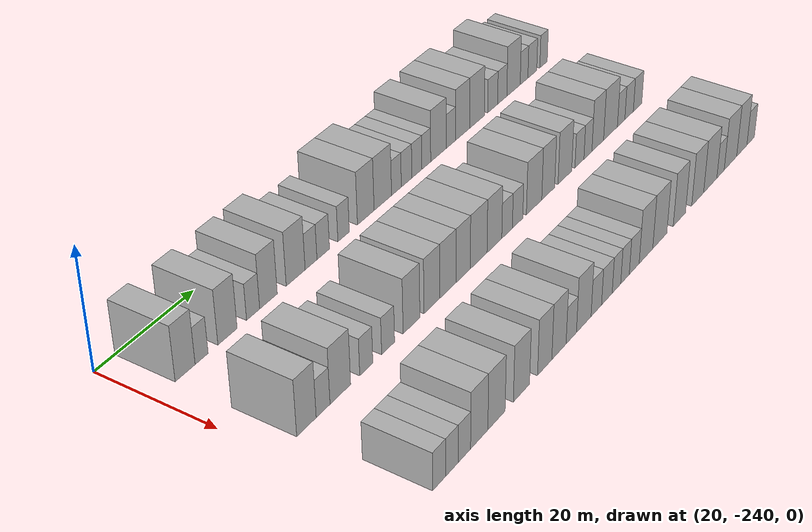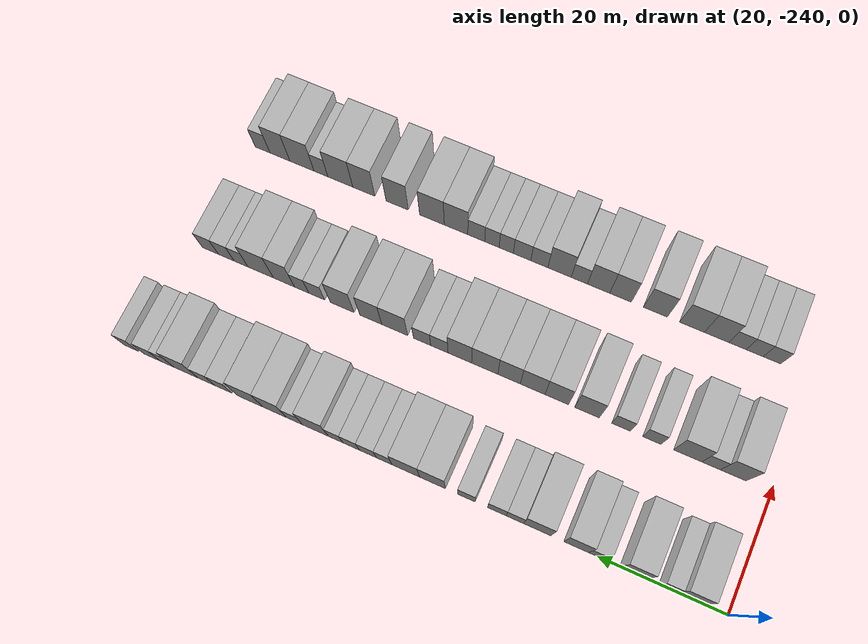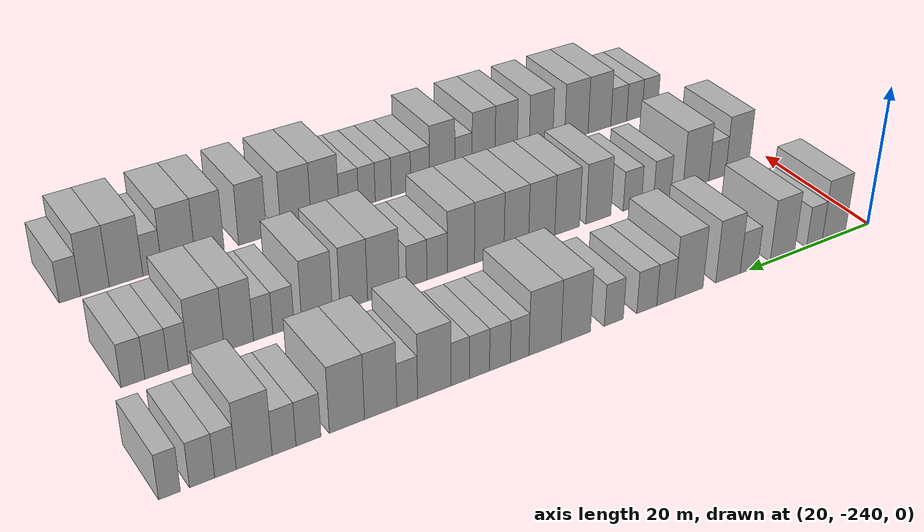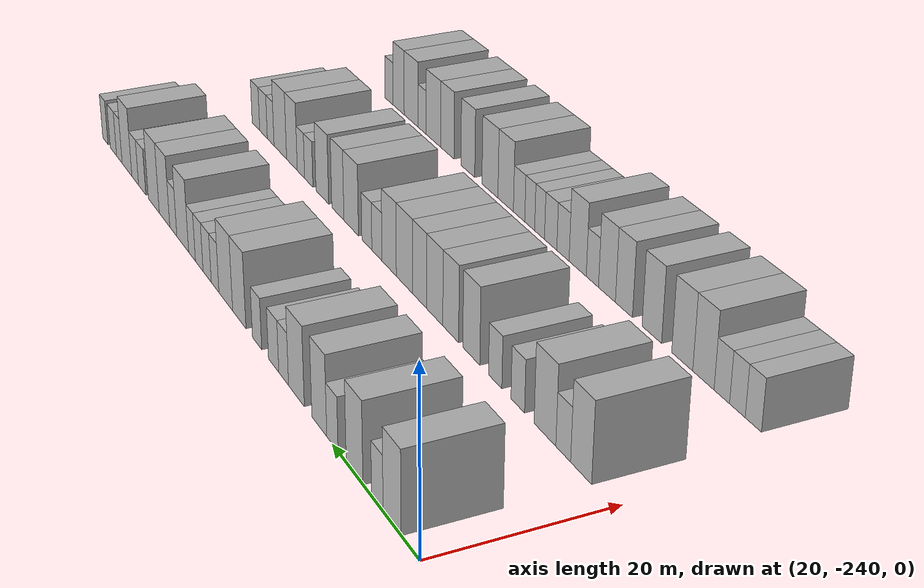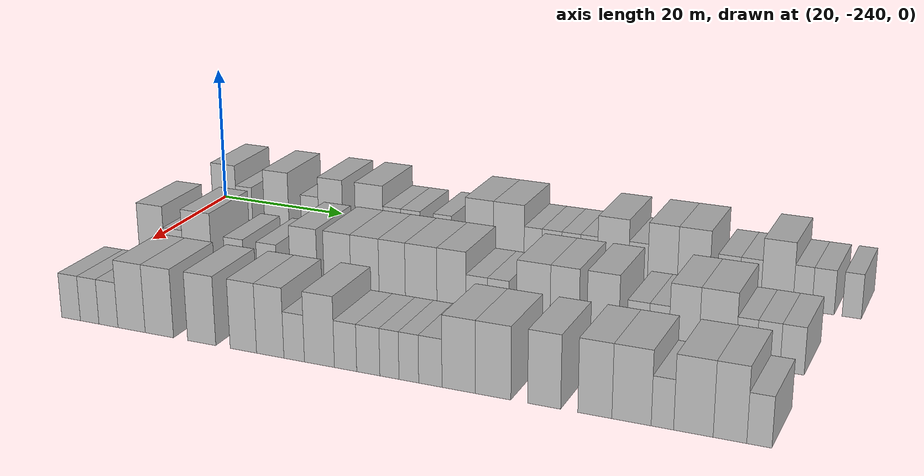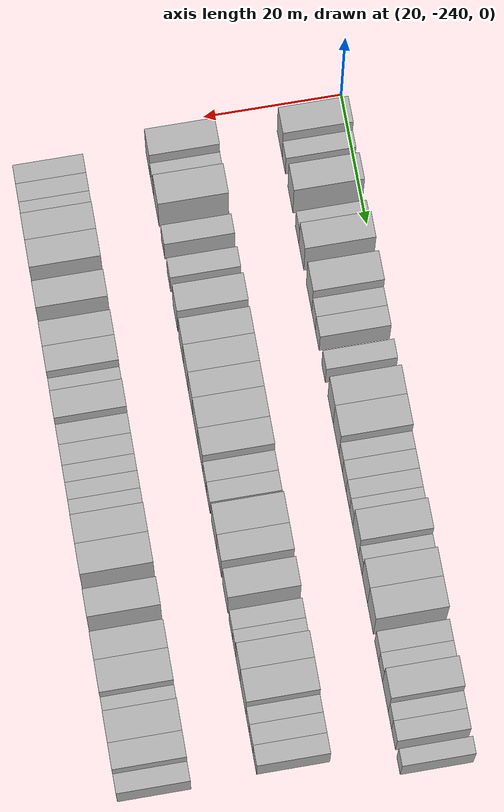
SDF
<sdf version="1.6">
 <world name="default">
  <model name="building_1">
   <static>1</static>
   <pose>25.0000 -234.0155 0 0.000000 0.000000 0.000000</pose>
   <link name="link">
    <pose>0 0 4.50 0 0 0</pose>
    <collision name="collision"><geometry><box><size>10.0000 3.9690 9.0000</size></box></geometry></collision>
    <visual name="visual">
     <cast_shadows>0</cast_shadows>
     <geometry><box><size>10.0000 3.9690 9.0000</size></box></geometry>
     <material>
      <script>
       <uri>model://HANNAS_wall/materials/scripts</uri>
       <uri>model://HANNAS_wall/materials/textures</uri>
       <name>vrc/HANNAS_wall</name>
      </script>
     </material>
    </visual>
   </link>
  </model>
  <model name="building_2">
   <static>1</static>
   <pose>25.0000 -230.7172 0 0.000000 0.000000 0.000000</pose>
   <link name="link">
    <pose>0 0 3.00 0 0 0</pose>
    <collision name="collision"><geometry><box><size>10.0000 2.6275 6.0000</size></box></geometry></collision>
    <visual name="visual">
     <cast_shadows>0</cast_shadows>
     <geometry><box><size>10.0000 2.6275 6.0000</size></box></geometry>
     <material>
      <script>
       <uri>model://HANNAS_wall/materials/scripts</uri>
       <uri>model://HANNAS_wall/materials/textures</uri>
       <name>vrc/HANNAS_wall</name>
      </script>
     </material>
    </visual>
   </link>
  </model>
  <model name="building_3">
   <static>1</static>
   <pose>25.0000 -225.3931 0 0.000000 0.000000 0.000000</pose>
   <link name="link">
    <pose>0 0 4.50 0 0 0</pose>
    <collision name="collision"><geometry><box><size>10.0000 4.0208 9.0000</size></box></geometry></collision>
    <visual name="visual">
     <cast_shadows>0</cast_shadows>
     <geometry><box><size>10.0000 4.0208 9.0000</size></box></geometry>
     <material>
      <script>
       <uri>model://HANNAS_wall/materials/scripts</uri>
       <uri>model://HANNAS_wall/materials/textures</uri>
       <name>vrc/HANNAS_wall</name>
      </script>
     </material>
    </visual>
   </link>
  </model>
  <model name="building_4">
   <static>1</static>
   <pose>25.0000 -219.9608 0 0.000000 0.000000 0.000000</pose>
   <link name="link">
    <pose>0 0 3.00 0 0 0</pose>
    <collision name="collision"><geometry><box><size>10.0000 2.8438 6.0000</size></box></geometry></collision>
    <visual name="visual">
     <cast_shadows>0</cast_shadows>
     <geometry><box><size>10.0000 2.8438 6.0000</size></box></geometry>
     <material>
      <script>
       <uri>model://HANNAS_wall/materials/scripts</uri>
       <uri>model://HANNAS_wall/materials/textures</uri>
       <name>vrc/HANNAS_wall</name>
      </script>
     </material>
    </visual>
   </link>
  </model>
  <model name="building_5">
   <static>1</static>
   <pose>25.0000 -216.6065 0 0.000000 0.000000 0.000000</pose>
   <link name="link">
    <pose>0 0 4.50 0 0 0</pose>
    <collision name="collision"><geometry><box><size>10.0000 3.8647 9.0000</size></box></geometry></collision>
    <visual name="visual">
     <cast_shadows>0</cast_shadows>
     <geometry><box><size>10.0000 3.8647 9.0000</size></box></geometry>
     <material>
      <script>
       <uri>model://HANNAS_wall/materials/scripts</uri>
       <uri>model://HANNAS_wall/materials/textures</uri>
       <name>vrc/HANNAS_wall</name>
      </script>
     </material>
    </visual>
   </link>
  </model>
  <model name="building_6">
   <static>1</static>
   <pose>25.0000 -210.5149 0 0.000000 0.000000 0.000000</pose>
   <link name="link">
    <pose>0 0 4.50 0 0 0</pose>
    <collision name="collision"><geometry><box><size>10.0000 4.3187 9.0000</size></box></geometry></collision>
    <visual name="visual">
     <cast_shadows>0</cast_shadows>
     <geometry><box><size>10.0000 4.3187 9.0000</size></box></geometry>
     <material>
      <script>
       <uri>model://HANNAS_wall/materials/scripts</uri>
       <uri>model://HANNAS_wall/materials/textures</uri>
       <name>vrc/HANNAS_wall</name>
      </script>
     </material>
    </visual>
   </link>
  </model>
  <model name="building_7">
   <static>1</static>
   <pose>25.0000 -206.9781 0 0.000000 0.000000 0.000000</pose>
   <link name="link">
    <pose>0 0 3.00 0 0 0</pose>
    <collision name="collision"><geometry><box><size>10.0000 2.7549 6.0000</size></box></geometry></collision>
    <visual name="visual">
     <cast_shadows>0</cast_shadows>
     <geometry><box><size>10.0000 2.7549 6.0000</size></box></geometry>
     <material>
      <script>
       <uri>model://HANNAS_wall/materials/scripts</uri>
       <uri>model://HANNAS_wall/materials/textures</uri>
       <name>vrc/HANNAS_wall</name>
      </script>
     </material>
    </visual>
   </link>
  </model>
  <model name="building_8">
   <static>1</static>
   <pose>25.0000 -204.1139 0 0.000000 0.000000 0.000000</pose>
   <link name="link">
    <pose>0 0 3.00 0 0 0</pose>
    <collision name="collision"><geometry><box><size>10.0000 2.9734 6.0000</size></box></geometry></collision>
    <visual name="visual">
     <cast_shadows>0</cast_shadows>
     <geometry><box><size>10.0000 2.9734 6.0000</size></box></geometry>
     <material>
      <script>
       <uri>model://HANNAS_wall/materials/scripts</uri>
       <uri>model://HANNAS_wall/materials/textures</uri>
       <name>vrc/HANNAS_wall</name>
      </script>
     </material>
    </visual>
   </link>
  </model>
  <model name="building_9">
   <static>1</static>
   <pose>25.0000 -199.2379 0 0.000000 0.000000 0.000000</pose>
   <link name="link">
    <pose>0 0 3.00 0 0 0</pose>
    <collision name="collision"><geometry><box><size>10.0000 2.7785 6.0000</size></box></geometry></collision>
    <visual name="visual">
     <cast_shadows>0</cast_shadows>
     <geometry><box><size>10.0000 2.7785 6.0000</size></box></geometry>
     <material>
      <script>
       <uri>model://HANNAS_wall/materials/scripts</uri>
       <uri>model://HANNAS_wall/materials/textures</uri>
       <name>vrc/HANNAS_wall</name>
      </script>
     </material>
    </visual>
   </link>
  </model>
  <model name="building_10">
   <static>1</static>
   <pose>25.0000 -193.7581 0 0.000000 0.000000 0.000000</pose>
   <link name="link">
    <pose>0 0 4.50 0 0 0</pose>
    <collision name="collision"><geometry><box><size>10.0000 4.1811 9.0000</size></box></geometry></collision>
    <visual name="visual">
     <cast_shadows>0</cast_shadows>
     <geometry><box><size>10.0000 4.1811 9.0000</size></box></geometry>
     <material>
      <script>
       <uri>model://HANNAS_wall/materials/scripts</uri>
       <uri>model://HANNAS_wall/materials/textures</uri>
       <name>vrc/HANNAS_wall</name>
      </script>
     </material>
    </visual>
   </link>
  </model>
  <model name="building_11">
   <static>1</static>
   <pose>25.0000 -189.4293 0 0.000000 0.000000 0.000000</pose>
   <link name="link">
    <pose>0 0 4.50 0 0 0</pose>
    <collision name="collision"><geometry><box><size>10.0000 4.4765 9.0000</size></box></geometry></collision>
    <visual name="visual">
     <cast_shadows>0</cast_shadows>
     <geometry><box><size>10.0000 4.4765 9.0000</size></box></geometry>
     <material>
      <script>
       <uri>model://HANNAS_wall/materials/scripts</uri>
       <uri>model://HANNAS_wall/materials/textures</uri>
       <name>vrc/HANNAS_wall</name>
      </script>
     </material>
    </visual>
   </link>
  </model>
  <model name="building_12">
   <static>1</static>
   <pose>25.0000 -185.9155 0 0.000000 0.000000 0.000000</pose>
   <link name="link">
    <pose>0 0 3.00 0 0 0</pose>
    <collision name="collision"><geometry><box><size>10.0000 2.5512 6.0000</size></box></geometry></collision>
    <visual name="visual">
     <cast_shadows>0</cast_shadows>
     <geometry><box><size>10.0000 2.5512 6.0000</size></box></geometry>
     <material>
      <script>
       <uri>model://HANNAS_wall/materials/scripts</uri>
       <uri>model://HANNAS_wall/materials/textures</uri>
       <name>vrc/HANNAS_wall</name>
      </script>
     </material>
    </visual>
   </link>
  </model>
  <model name="building_13">
   <static>1</static>
   <pose>25.0000 -183.2340 0 0.000000 0.000000 0.000000</pose>
   <link name="link">
    <pose>0 0 3.00 0 0 0</pose>
    <collision name="collision"><geometry><box><size>10.0000 2.8118 6.0000</size></box></geometry></collision>
    <visual name="visual">
     <cast_shadows>0</cast_shadows>
     <geometry><box><size>10.0000 2.8118 6.0000</size></box></geometry>
     <material>
      <script>
       <uri>model://HANNAS_wall/materials/scripts</uri>
       <uri>model://HANNAS_wall/materials/textures</uri>
       <name>vrc/HANNAS_wall</name>
      </script>
     </material>
    </visual>
   </link>
  </model>
  <model name="building_14">
   <static>1</static>
   <pose>25.0000 -180.4891 0 0.000000 0.000000 0.000000</pose>
   <link name="link">
    <pose>0 0 3.00 0 0 0</pose>
    <collision name="collision"><geometry><box><size>10.0000 2.6780 6.0000</size></box></geometry></collision>
    <visual name="visual">
     <cast_shadows>0</cast_shadows>
     <geometry><box><size>10.0000 2.6780 6.0000</size></box></geometry>
     <material>
      <script>
       <uri>model://HANNAS_wall/materials/scripts</uri>
       <uri>model://HANNAS_wall/materials/textures</uri>
       <name>vrc/HANNAS_wall</name>
      </script>
     </material>
    </visual>
   </link>
  </model>
  <model name="building_15">
   <static>1</static>
   <pose>25.0000 -177.9431 0 0.000000 0.000000 0.000000</pose>
   <link name="link">
    <pose>0 0 3.00 0 0 0</pose>
    <collision name="collision"><geometry><box><size>10.0000 2.4139 6.0000</size></box></geometry></collision>
    <visual name="visual">
     <cast_shadows>0</cast_shadows>
     <geometry><box><size>10.0000 2.4139 6.0000</size></box></geometry>
     <material>
      <script>
       <uri>model://HANNAS_wall/materials/scripts</uri>
       <uri>model://HANNAS_wall/materials/textures</uri>
       <name>vrc/HANNAS_wall</name>
      </script>
     </material>
    </visual>
   </link>
  </model>
  <model name="building_16">
   <static>1</static>
   <pose>25.0000 -174.5769 0 0.000000 0.000000 0.000000</pose>
   <link name="link">
    <pose>0 0 4.50 0 0 0</pose>
    <collision name="collision"><geometry><box><size>10.0000 4.3185 9.0000</size></box></geometry></collision>
    <visual name="visual">
     <cast_shadows>0</cast_shadows>
     <geometry><box><size>10.0000 4.3185 9.0000</size></box></geometry>
     <material>
      <script>
       <uri>model://HANNAS_wall/materials/scripts</uri>
       <uri>model://HANNAS_wall/materials/textures</uri>
       <name>vrc/HANNAS_wall</name>
      </script>
     </material>
    </visual>
   </link>
  </model>
  <model name="building_17">
   <static>1</static>
   <pose>25.0000 -171.0987 0 0.000000 0.000000 0.000000</pose>
   <link name="link">
    <pose>0 0 3.00 0 0 0</pose>
    <collision name="collision"><geometry><box><size>10.0000 2.6379 6.0000</size></box></geometry></collision>
    <visual name="visual">
     <cast_shadows>0</cast_shadows>
     <geometry><box><size>10.0000 2.6379 6.0000</size></box></geometry>
     <material>
      <script>
       <uri>model://HANNAS_wall/materials/scripts</uri>
       <uri>model://HANNAS_wall/materials/textures</uri>
       <name>vrc/HANNAS_wall</name>
      </script>
     </material>
    </visual>
   </link>
  </model>
  <model name="building_18">
   <static>1</static>
   <pose>25.0000 -167.7574 0 0.000000 0.000000 0.000000</pose>
   <link name="link">
    <pose>0 0 4.50 0 0 0</pose>
    <collision name="collision"><geometry><box><size>10.0000 4.0447 9.0000</size></box></geometry></collision>
    <visual name="visual">
     <cast_shadows>0</cast_shadows>
     <geometry><box><size>10.0000 4.0447 9.0000</size></box></geometry>
     <material>
      <script>
       <uri>model://HANNAS_wall/materials/scripts</uri>
       <uri>model://HANNAS_wall/materials/textures</uri>
       <name>vrc/HANNAS_wall</name>
      </script>
     </material>
    </visual>
   </link>
  </model>
  <model name="building_19">
   <static>1</static>
   <pose>25.0000 -163.5746 0 0.000000 0.000000 0.000000</pose>
   <link name="link">
    <pose>0 0 4.50 0 0 0</pose>
    <collision name="collision"><geometry><box><size>10.0000 4.3209 9.0000</size></box></geometry></collision>
    <visual name="visual">
     <cast_shadows>0</cast_shadows>
     <geometry><box><size>10.0000 4.3209 9.0000</size></box></geometry>
     <material>
      <script>
       <uri>model://HANNAS_wall/materials/scripts</uri>
       <uri>model://HANNAS_wall/materials/textures</uri>
       <name>vrc/HANNAS_wall</name>
      </script>
     </material>
    </visual>
   </link>
  </model>
  <model name="building_20">
   <static>1</static>
   <pose>25.0000 -158.9256 0 0.000000 0.000000 0.000000</pose>
   <link name="link">
    <pose>0 0 3.00 0 0 0</pose>
    <collision name="collision"><geometry><box><size>10.0000 2.9771 6.0000</size></box></geometry></collision>
    <visual name="visual">
     <cast_shadows>0</cast_shadows>
     <geometry><box><size>10.0000 2.9771 6.0000</size></box></geometry>
     <material>
      <script>
       <uri>model://HANNAS_wall/materials/scripts</uri>
       <uri>model://HANNAS_wall/materials/textures</uri>
       <name>vrc/HANNAS_wall</name>
      </script>
     </material>
    </visual>
   </link>
  </model>
  <model name="building_21">
   <static>1</static>
   <pose>25.0000 -156.0341 0 0.000000 0.000000 0.000000</pose>
   <link name="link">
    <pose>0 0 3.00 0 0 0</pose>
    <collision name="collision"><geometry><box><size>10.0000 2.8059 6.0000</size></box></geometry></collision>
    <visual name="visual">
     <cast_shadows>0</cast_shadows>
     <geometry><box><size>10.0000 2.8059 6.0000</size></box></geometry>
     <material>
      <script>
       <uri>model://HANNAS_wall/materials/scripts</uri>
       <uri>model://HANNAS_wall/materials/textures</uri>
       <name>vrc/HANNAS_wall</name>
      </script>
     </material>
    </visual>
   </link>
  </model>
  <model name="building_22">
   <static>1</static>
   <pose>25.0000 -152.5541 0 0.000000 0.000000 0.000000</pose>
   <link name="link">
    <pose>0 0 4.50 0 0 0</pose>
    <collision name="collision"><geometry><box><size>10.0000 4.1543 9.0000</size></box></geometry></collision>
    <visual name="visual">
     <cast_shadows>0</cast_shadows>
     <geometry><box><size>10.0000 4.1543 9.0000</size></box></geometry>
     <material>
      <script>
       <uri>model://HANNAS_wall/materials/scripts</uri>
       <uri>model://HANNAS_wall/materials/textures</uri>
       <name>vrc/HANNAS_wall</name>
      </script>
     </material>
    </visual>
   </link>
  </model>
  <model name="building_23">
   <static>1</static>
   <pose>25.0000 -149.2589 0 0.000000 0.000000 0.000000</pose>
   <link name="link">
    <pose>0 0 3.00 0 0 0</pose>
    <collision name="collision"><geometry><box><size>10.0000 2.4361 6.0000</size></box></geometry></collision>
    <visual name="visual">
     <cast_shadows>0</cast_shadows>
     <geometry><box><size>10.0000 2.4361 6.0000</size></box></geometry>
     <material>
      <script>
       <uri>model://HANNAS_wall/materials/scripts</uri>
       <uri>model://HANNAS_wall/materials/textures</uri>
       <name>vrc/HANNAS_wall</name>
      </script>
     </material>
    </visual>
   </link>
  </model>
  <model name="building_24">
   <static>1</static>
   <pose>25.0000 -146.6283 0 0.000000 0.000000 0.000000</pose>
   <link name="link">
    <pose>0 0 3.00 0 0 0</pose>
    <collision name="collision"><geometry><box><size>10.0000 2.8251 6.0000</size></box></geometry></collision>
    <visual name="visual">
     <cast_shadows>0</cast_shadows>
     <geometry><box><size>10.0000 2.8251 6.0000</size></box></geometry>
     <material>
      <script>
       <uri>model://HANNAS_wall/materials/scripts</uri>
       <uri>model://HANNAS_wall/materials/textures</uri>
       <name>vrc/HANNAS_wall</name>
      </script>
     </material>
    </visual>
   </link>
  </model>
  <model name="building_25">
   <static>1</static>
   <pose>25.0000 -143.0133 0 0.000000 0.000000 0.000000</pose>
   <link name="link">
    <pose>0 0 3.00 0 0 0</pose>
    <collision name="collision"><geometry><box><size>10.0000 2.4048 6.0000</size></box></geometry></collision>
    <visual name="visual">
     <cast_shadows>0</cast_shadows>
     <geometry><box><size>10.0000 2.4048 6.0000</size></box></geometry>
     <material>
      <script>
       <uri>model://HANNAS_wall/materials/scripts</uri>
       <uri>model://HANNAS_wall/materials/textures</uri>
       <name>vrc/HANNAS_wall</name>
      </script>
     </material>
    </visual>
   </link>
  </model>
  <model name="building_121">
   <static>1</static>
   <pose>44.0000 -233.9876 0 0.000000 0.000000 0.000000</pose>
   <link name="link">
    <pose>0 0 4.50 0 0 0</pose>
    <collision name="collision"><geometry><box><size>10.0000 4.0248 9.0000</size></box></geometry></collision>
    <visual name="visual">
     <cast_shadows>0</cast_shadows>
     <geometry><box><size>10.0000 4.0248 9.0000</size></box></geometry>
     <material>
      <script>
       <uri>model://HANNAS_wall/materials/scripts</uri>
       <uri>model://HANNAS_wall/materials/textures</uri>
       <name>vrc/HANNAS_wall</name>
      </script>
     </material>
    </visual>
   </link>
  </model>
  <model name="building_122">
   <static>1</static>
   <pose>44.0000 -230.5159 0 0.000000 0.000000 0.000000</pose>
   <link name="link">
    <pose>0 0 3.00 0 0 0</pose>
    <collision name="collision"><geometry><box><size>10.0000 2.9187 6.0000</size></box></geometry></collision>
    <visual name="visual">
     <cast_shadows>0</cast_shadows>
     <geometry><box><size>10.0000 2.9187 6.0000</size></box></geometry>
     <material>
      <script>
       <uri>model://HANNAS_wall/materials/scripts</uri>
       <uri>model://HANNAS_wall/materials/textures</uri>
       <name>vrc/HANNAS_wall</name>
      </script>
     </material>
    </visual>
   </link>
  </model>
  <model name="building_123">
   <static>1</static>
   <pose>44.0000 -226.8303 0 0.000000 0.000000 0.000000</pose>
   <link name="link">
    <pose>0 0 4.50 0 0 0</pose>
    <collision name="collision"><geometry><box><size>10.0000 4.4525 9.0000</size></box></geometry></collision>
    <visual name="visual">
     <cast_shadows>0</cast_shadows>
     <geometry><box><size>10.0000 4.4525 9.0000</size></box></geometry>
     <material>
      <script>
       <uri>model://HANNAS_wall/materials/scripts</uri>
       <uri>model://HANNAS_wall/materials/textures</uri>
       <name>vrc/HANNAS_wall</name>
      </script>
     </material>
    </visual>
   </link>
  </model>
  <model name="building_124">
   <static>1</static>
   <pose>44.0000 -221.1422 0 0.000000 0.000000 0.000000</pose>
   <link name="link">
    <pose>0 0 3.00 0 0 0</pose>
    <collision name="collision"><geometry><box><size>10.0000 2.9237 6.0000</size></box></geometry></collision>
    <visual name="visual">
     <cast_shadows>0</cast_shadows>
     <geometry><box><size>10.0000 2.9237 6.0000</size></box></geometry>
     <material>
      <script>
       <uri>model://HANNAS_wall/materials/scripts</uri>
       <uri>model://HANNAS_wall/materials/textures</uri>
       <name>vrc/HANNAS_wall</name>
      </script>
     </material>
    </visual>
   </link>
  </model>
  <model name="building_125">
   <static>1</static>
   <pose>44.0000 -216.1882 0 0.000000 0.000000 0.000000</pose>
   <link name="link">
    <pose>0 0 3.00 0 0 0</pose>
    <collision name="collision"><geometry><box><size>10.0000 2.9843 6.0000</size></box></geometry></collision>
    <visual name="visual">
     <cast_shadows>0</cast_shadows>
     <geometry><box><size>10.0000 2.9843 6.0000</size></box></geometry>
     <material>
      <script>
       <uri>model://HANNAS_wall/materials/scripts</uri>
       <uri>model://HANNAS_wall/materials/textures</uri>
       <name>vrc/HANNAS_wall</name>
      </script>
     </material>
    </visual>
   </link>
  </model>
  <model name="building_126">
   <static>1</static>
   <pose>44.0000 -210.7000 0 0.000000 0.000000 0.000000</pose>
   <link name="link">
    <pose>0 0 4.50 0 0 0</pose>
    <collision name="collision"><geometry><box><size>10.0000 3.9922 9.0000</size></box></geometry></collision>
    <visual name="visual">
     <cast_shadows>0</cast_shadows>
     <geometry><box><size>10.0000 3.9922 9.0000</size></box></geometry>
     <material>
      <script>
       <uri>model://HANNAS_wall/materials/scripts</uri>
       <uri>model://HANNAS_wall/materials/textures</uri>
       <name>vrc/HANNAS_wall</name>
      </script>
     </material>
    </visual>
   </link>
  </model>
  <model name="building_127">
   <static>1</static>
   <pose>44.0000 -205.7684 0 0.000000 0.000000 0.000000</pose>
   <link name="link">
    <pose>0 0 4.50 0 0 0</pose>
    <collision name="collision"><geometry><box><size>10.0000 3.8709 9.0000</size></box></geometry></collision>
    <visual name="visual">
     <cast_shadows>0</cast_shadows>
     <geometry><box><size>10.0000 3.8709 9.0000</size></box></geometry>
     <material>
      <script>
       <uri>model://HANNAS_wall/materials/scripts</uri>
       <uri>model://HANNAS_wall/materials/textures</uri>
       <name>vrc/HANNAS_wall</name>
      </script>
     </material>
    </visual>
   </link>
  </model>
  <model name="building_128">
   <static>1</static>
   <pose>44.0000 -201.8147 0 0.000000 0.000000 0.000000</pose>
   <link name="link">
    <pose>0 0 4.50 0 0 0</pose>
    <collision name="collision"><geometry><box><size>10.0000 4.0365 9.0000</size></box></geometry></collision>
    <visual name="visual">
     <cast_shadows>0</cast_shadows>
     <geometry><box><size>10.0000 4.0365 9.0000</size></box></geometry>
     <material>
      <script>
       <uri>model://HANNAS_wall/materials/scripts</uri>
       <uri>model://HANNAS_wall/materials/textures</uri>
       <name>vrc/HANNAS_wall</name>
      </script>
     </material>
    </visual>
   </link>
  </model>
  <model name="building_129">
   <static>1</static>
   <pose>44.0000 -197.9460 0 0.000000 0.000000 0.000000</pose>
   <link name="link">
    <pose>0 0 4.50 0 0 0</pose>
    <collision name="collision"><geometry><box><size>10.0000 3.7010 9.0000</size></box></geometry></collision>
    <visual name="visual">
     <cast_shadows>0</cast_shadows>
     <geometry><box><size>10.0000 3.7010 9.0000</size></box></geometry>
     <material>
      <script>
       <uri>model://HANNAS_wall/materials/scripts</uri>
       <uri>model://HANNAS_wall/materials/textures</uri>
       <name>vrc/HANNAS_wall</name>
      </script>
     </material>
    </visual>
   </link>
  </model>
  <model name="building_130">
   <static>1</static>
   <pose>44.0000 -193.9001 0 0.000000 0.000000 0.000000</pose>
   <link name="link">
    <pose>0 0 4.50 0 0 0</pose>
    <collision name="collision"><geometry><box><size>10.0000 4.3909 9.0000</size></box></geometry></collision>
    <visual name="visual">
     <cast_shadows>0</cast_shadows>
     <geometry><box><size>10.0000 4.3909 9.0000</size></box></geometry>
     <material>
      <script>
       <uri>model://HANNAS_wall/materials/scripts</uri>
       <uri>model://HANNAS_wall/materials/textures</uri>
       <name>vrc/HANNAS_wall</name>
      </script>
     </material>
    </visual>
   </link>
  </model>
  <model name="building_131">
   <static>1</static>
   <pose>44.0000 -189.7257 0 0.000000 0.000000 0.000000</pose>
   <link name="link">
    <pose>0 0 4.50 0 0 0</pose>
    <collision name="collision"><geometry><box><size>10.0000 3.9578 9.0000</size></box></geometry></collision>
    <visual name="visual">
     <cast_shadows>0</cast_shadows>
     <geometry><box><size>10.0000 3.9578 9.0000</size></box></geometry>
     <material>
      <script>
       <uri>model://HANNAS_wall/materials/scripts</uri>
       <uri>model://HANNAS_wall/materials/textures</uri>
       <name>vrc/HANNAS_wall</name>
      </script>
     </material>
    </visual>
   </link>
  </model>
  <model name="building_132">
   <static>1</static>
   <pose>44.0000 -186.2888 0 0.000000 0.000000 0.000000</pose>
   <link name="link">
    <pose>0 0 3.00 0 0 0</pose>
    <collision name="collision"><geometry><box><size>10.0000 2.9159 6.0000</size></box></geometry></collision>
    <visual name="visual">
     <cast_shadows>0</cast_shadows>
     <geometry><box><size>10.0000 2.9159 6.0000</size></box></geometry>
     <material>
      <script>
       <uri>model://HANNAS_wall/materials/scripts</uri>
       <uri>model://HANNAS_wall/materials/textures</uri>
       <name>vrc/HANNAS_wall</name>
      </script>
     </material>
    </visual>
   </link>
  </model>
  <model name="building_133">
   <static>1</static>
   <pose>44.0000 -183.3823 0 0.000000 0.000000 0.000000</pose>
   <link name="link">
    <pose>0 0 3.00 0 0 0</pose>
    <collision name="collision"><geometry><box><size>10.0000 2.8970 6.0000</size></box></geometry></collision>
    <visual name="visual">
     <cast_shadows>0</cast_shadows>
     <geometry><box><size>10.0000 2.8970 6.0000</size></box></geometry>
     <material>
      <script>
       <uri>model://HANNAS_wall/materials/scripts</uri>
       <uri>model://HANNAS_wall/materials/textures</uri>
       <name>vrc/HANNAS_wall</name>
      </script>
     </material>
    </visual>
   </link>
  </model>
  <model name="building_134">
   <static>1</static>
   <pose>44.0000 -178.7343 0 0.000000 0.000000 0.000000</pose>
   <link name="link">
    <pose>0 0 4.50 0 0 0</pose>
    <collision name="collision"><geometry><box><size>10.0000 4.3991 9.0000</size></box></geometry></collision>
    <visual name="visual">
     <cast_shadows>0</cast_shadows>
     <geometry><box><size>10.0000 4.3991 9.0000</size></box></geometry>
     <material>
      <script>
       <uri>model://HANNAS_wall/materials/scripts</uri>
       <uri>model://HANNAS_wall/materials/textures</uri>
       <name>vrc/HANNAS_wall</name>
      </script>
     </material>
    </visual>
   </link>
  </model>
  <model name="building_135">
   <static>1</static>
   <pose>44.0000 -174.6560 0 0.000000 0.000000 0.000000</pose>
   <link name="link">
    <pose>0 0 4.50 0 0 0</pose>
    <collision name="collision"><geometry><box><size>10.0000 3.7574 9.0000</size></box></geometry></collision>
    <visual name="visual">
     <cast_shadows>0</cast_shadows>
     <geometry><box><size>10.0000 3.7574 9.0000</size></box></geometry>
     <material>
      <script>
       <uri>model://HANNAS_wall/materials/scripts</uri>
       <uri>model://HANNAS_wall/materials/textures</uri>
       <name>vrc/HANNAS_wall</name>
      </script>
     </material>
    </visual>
   </link>
  </model>
  <model name="building_136">
   <static>1</static>
   <pose>44.0000 -169.7313 0 0.000000 0.000000 0.000000</pose>
   <link name="link">
    <pose>0 0 4.50 0 0 0</pose>
    <collision name="collision"><geometry><box><size>10.0000 4.0921 9.0000</size></box></geometry></collision>
    <visual name="visual">
     <cast_shadows>0</cast_shadows>
     <geometry><box><size>10.0000 4.0921 9.0000</size></box></geometry>
     <material>
      <script>
       <uri>model://HANNAS_wall/materials/scripts</uri>
       <uri>model://HANNAS_wall/materials/textures</uri>
       <name>vrc/HANNAS_wall</name>
      </script>
     </material>
    </visual>
   </link>
  </model>
  <model name="building_137">
   <static>1</static>
   <pose>44.0000 -165.3041 0 0.000000 0.000000 0.000000</pose>
   <link name="link">
    <pose>0 0 3.00 0 0 0</pose>
    <collision name="collision"><geometry><box><size>10.0000 2.7622 6.0000</size></box></geometry></collision>
    <visual name="visual">
     <cast_shadows>0</cast_shadows>
     <geometry><box><size>10.0000 2.7622 6.0000</size></box></geometry>
     <material>
      <script>
       <uri>model://HANNAS_wall/materials/scripts</uri>
       <uri>model://HANNAS_wall/materials/textures</uri>
       <name>vrc/HANNAS_wall</name>
      </script>
     </material>
    </visual>
   </link>
  </model>
  <model name="building_138">
   <static>1</static>
   <pose>44.0000 -162.6809 0 0.000000 0.000000 0.000000</pose>
   <link name="link">
    <pose>0 0 3.00 0 0 0</pose>
    <collision name="collision"><geometry><box><size>10.0000 2.4841 6.0000</size></box></geometry></collision>
    <visual name="visual">
     <cast_shadows>0</cast_shadows>
     <geometry><box><size>10.0000 2.4841 6.0000</size></box></geometry>
     <material>
      <script>
       <uri>model://HANNAS_wall/materials/scripts</uri>
       <uri>model://HANNAS_wall/materials/textures</uri>
       <name>vrc/HANNAS_wall</name>
      </script>
     </material>
    </visual>
   </link>
  </model>
  <model name="building_139">
   <static>1</static>
   <pose>44.0000 -159.5932 0 0.000000 0.000000 0.000000</pose>
   <link name="link">
    <pose>0 0 4.50 0 0 0</pose>
    <collision name="collision"><geometry><box><size>10.0000 3.6913 9.0000</size></box></geometry></collision>
    <visual name="visual">
     <cast_shadows>0</cast_shadows>
     <geometry><box><size>10.0000 3.6913 9.0000</size></box></geometry>
     <material>
      <script>
       <uri>model://HANNAS_wall/materials/scripts</uri>
       <uri>model://HANNAS_wall/materials/textures</uri>
       <name>vrc/HANNAS_wall</name>
      </script>
     </material>
    </visual>
   </link>
  </model>
  <model name="building_140">
   <static>1</static>
   <pose>44.0000 -155.5128 0 0.000000 0.000000 0.000000</pose>
   <link name="link">
    <pose>0 0 4.50 0 0 0</pose>
    <collision name="collision"><geometry><box><size>10.0000 4.4693 9.0000</size></box></geometry></collision>
    <visual name="visual">
     <cast_shadows>0</cast_shadows>
     <geometry><box><size>10.0000 4.4693 9.0000</size></box></geometry>
     <material>
      <script>
       <uri>model://HANNAS_wall/materials/scripts</uri>
       <uri>model://HANNAS_wall/materials/textures</uri>
       <name>vrc/HANNAS_wall</name>
      </script>
     </material>
    </visual>
   </link>
  </model>
  <model name="building_141">
   <static>1</static>
   <pose>44.0000 -152.0530 0 0.000000 0.000000 0.000000</pose>
   <link name="link">
    <pose>0 0 3.00 0 0 0</pose>
    <collision name="collision"><geometry><box><size>10.0000 2.4503 6.0000</size></box></geometry></collision>
    <visual name="visual">
     <cast_shadows>0</cast_shadows>
     <geometry><box><size>10.0000 2.4503 6.0000</size></box></geometry>
     <material>
      <script>
       <uri>model://HANNAS_wall/materials/scripts</uri>
       <uri>model://HANNAS_wall/materials/textures</uri>
       <name>vrc/HANNAS_wall</name>
      </script>
     </material>
    </visual>
   </link>
  </model>
  <model name="building_142">
   <static>1</static>
   <pose>44.0000 -149.4152 0 0.000000 0.000000 0.000000</pose>
   <link name="link">
    <pose>0 0 3.00 0 0 0</pose>
    <collision name="collision"><geometry><box><size>10.0000 2.8252 6.0000</size></box></geometry></collision>
    <visual name="visual">
     <cast_shadows>0</cast_shadows>
     <geometry><box><size>10.0000 2.8252 6.0000</size></box></geometry>
     <material>
      <script>
       <uri>model://HANNAS_wall/materials/scripts</uri>
       <uri>model://HANNAS_wall/materials/textures</uri>
       <name>vrc/HANNAS_wall</name>
      </script>
     </material>
    </visual>
   </link>
  </model>
  <model name="building_143">
   <static>1</static>
   <pose>44.0000 -146.5801 0 0.000000 0.000000 0.000000</pose>
   <link name="link">
    <pose>0 0 3.00 0 0 0</pose>
    <collision name="collision"><geometry><box><size>10.0000 2.8451 6.0000</size></box></geometry></collision>
    <visual name="visual">
     <cast_shadows>0</cast_shadows>
     <geometry><box><size>10.0000 2.8451 6.0000</size></box></geometry>
     <material>
      <script>
       <uri>model://HANNAS_wall/materials/scripts</uri>
       <uri>model://HANNAS_wall/materials/textures</uri>
       <name>vrc/HANNAS_wall</name>
      </script>
     </material>
    </visual>
   </link>
  </model>
  <model name="building_242">
   <static>1</static>
   <pose>63.0000 -233.5903 0 0.000000 0.000000 0.000000</pose>
   <link name="link">
    <pose>0 0 3.00 0 0 0</pose>
    <collision name="collision"><geometry><box><size>10.0000 2.8195 6.0000</size></box></geometry></collision>
    <visual name="visual">
     <cast_shadows>0</cast_shadows>
     <geometry><box><size>10.0000 2.8195 6.0000</size></box></geometry>
     <material>
      <script>
       <uri>model://HANNAS_wall/materials/scripts</uri>
       <uri>model://HANNAS_wall/materials/textures</uri>
       <name>vrc/HANNAS_wall</name>
      </script>
     </material>
    </visual>
   </link>
  </model>
  <model name="building_243">
   <static>1</static>
   <pose>63.0000 -230.7948 0 0.000000 0.000000 0.000000</pose>
   <link name="link">
    <pose>0 0 3.00 0 0 0</pose>
    <collision name="collision"><geometry><box><size>10.0000 2.7714 6.0000</size></box></geometry></collision>
    <visual name="visual">
     <cast_shadows>0</cast_shadows>
     <geometry><box><size>10.0000 2.7714 6.0000</size></box></geometry>
     <material>
      <script>
       <uri>model://HANNAS_wall/materials/scripts</uri>
       <uri>model://HANNAS_wall/materials/textures</uri>
       <name>vrc/HANNAS_wall</name>
      </script>
     </material>
    </visual>
   </link>
  </model>
  <model name="building_244">
   <static>1</static>
   <pose>63.0000 -228.0027 0 0.000000 0.000000 0.000000</pose>
   <link name="link">
    <pose>0 0 3.00 0 0 0</pose>
    <collision name="collision"><geometry><box><size>10.0000 2.8128 6.0000</size></box></geometry></collision>
    <visual name="visual">
     <cast_shadows>0</cast_shadows>
     <geometry><box><size>10.0000 2.8128 6.0000</size></box></geometry>
     <material>
      <script>
       <uri>model://HANNAS_wall/materials/scripts</uri>
       <uri>model://HANNAS_wall/materials/textures</uri>
       <name>vrc/HANNAS_wall</name>
      </script>
     </material>
    </visual>
   </link>
  </model>
  <model name="building_245">
   <static>1</static>
   <pose>63.0000 -224.5999 0 0.000000 0.000000 0.000000</pose>
   <link name="link">
    <pose>0 0 4.50 0 0 0</pose>
    <collision name="collision"><geometry><box><size>10.0000 3.9929 9.0000</size></box></geometry></collision>
    <visual name="visual">
     <cast_shadows>0</cast_shadows>
     <geometry><box><size>10.0000 3.9929 9.0000</size></box></geometry>
     <material>
      <script>
       <uri>model://HANNAS_wall/materials/scripts</uri>
       <uri>model://HANNAS_wall/materials/textures</uri>
       <name>vrc/HANNAS_wall</name>
      </script>
     </material>
    </visual>
   </link>
  </model>
  <model name="building_246">
   <static>1</static>
   <pose>63.0000 -220.5613 0 0.000000 0.000000 0.000000</pose>
   <link name="link">
    <pose>0 0 4.50 0 0 0</pose>
    <collision name="collision"><geometry><box><size>10.0000 4.0843 9.0000</size></box></geometry></collision>
    <visual name="visual">
     <cast_shadows>0</cast_shadows>
     <geometry><box><size>10.0000 4.0843 9.0000</size></box></geometry>
     <material>
      <script>
       <uri>model://HANNAS_wall/materials/scripts</uri>
       <uri>model://HANNAS_wall/materials/textures</uri>
       <name>vrc/HANNAS_wall</name>
      </script>
     </material>
    </visual>
   </link>
  </model>
  <model name="building_247">
   <static>1</static>
   <pose>63.0000 -214.5305 0 0.000000 0.000000 0.000000</pose>
   <link name="link">
    <pose>0 0 4.50 0 0 0</pose>
    <collision name="collision"><geometry><box><size>10.0000 3.9773 9.0000</size></box></geometry></collision>
    <visual name="visual">
     <cast_shadows>0</cast_shadows>
     <geometry><box><size>10.0000 3.9773 9.0000</size></box></geometry>
     <material>
      <script>
       <uri>model://HANNAS_wall/materials/scripts</uri>
       <uri>model://HANNAS_wall/materials/textures</uri>
       <name>vrc/HANNAS_wall</name>
      </script>
     </material>
    </visual>
   </link>
  </model>
  <model name="building_248">
   <static>1</static>
   <pose>63.0000 -208.7202 0 0.000000 0.000000 0.000000</pose>
   <link name="link">
    <pose>0 0 4.50 0 0 0</pose>
    <collision name="collision"><geometry><box><size>10.0000 3.6433 9.0000</size></box></geometry></collision>
    <visual name="visual">
     <cast_shadows>0</cast_shadows>
     <geometry><box><size>10.0000 3.6433 9.0000</size></box></geometry>
     <material>
      <script>
       <uri>model://HANNAS_wall/materials/scripts</uri>
       <uri>model://HANNAS_wall/materials/textures</uri>
       <name>vrc/HANNAS_wall</name>
      </script>
     </material>
    </visual>
   </link>
  </model>
  <model name="building_249">
   <static>1</static>
   <pose>63.0000 -205.0392 0 0.000000 0.000000 0.000000</pose>
   <link name="link">
    <pose>0 0 4.50 0 0 0</pose>
    <collision name="collision"><geometry><box><size>10.0000 3.7188 9.0000</size></box></geometry></collision>
    <visual name="visual">
     <cast_shadows>0</cast_shadows>
     <geometry><box><size>10.0000 3.7188 9.0000</size></box></geometry>
     <material>
      <script>
       <uri>model://HANNAS_wall/materials/scripts</uri>
       <uri>model://HANNAS_wall/materials/textures</uri>
       <name>vrc/HANNAS_wall</name>
      </script>
     </material>
    </visual>
   </link>
  </model>
  <model name="building_250">
   <static>1</static>
   <pose>63.0000 -201.8016 0 0.000000 0.000000 0.000000</pose>
   <link name="link">
    <pose>0 0 3.00 0 0 0</pose>
    <collision name="collision"><geometry><box><size>10.0000 2.7563 6.0000</size></box></geometry></collision>
    <visual name="visual">
     <cast_shadows>0</cast_shadows>
     <geometry><box><size>10.0000 2.7563 6.0000</size></box></geometry>
     <material>
      <script>
       <uri>model://HANNAS_wall/materials/scripts</uri>
       <uri>model://HANNAS_wall/materials/textures</uri>
       <name>vrc/HANNAS_wall</name>
      </script>
     </material>
    </visual>
   </link>
  </model>
  <model name="building_251">
   <static>1</static>
   <pose>63.0000 -198.4385 0 0.000000 0.000000 0.000000</pose>
   <link name="link">
    <pose>0 0 4.50 0 0 0</pose>
    <collision name="collision"><geometry><box><size>10.0000 3.9699 9.0000</size></box></geometry></collision>
    <visual name="visual">
     <cast_shadows>0</cast_shadows>
     <geometry><box><size>10.0000 3.9699 9.0000</size></box></geometry>
     <material>
      <script>
       <uri>model://HANNAS_wall/materials/scripts</uri>
       <uri>model://HANNAS_wall/materials/textures</uri>
       <name>vrc/HANNAS_wall</name>
      </script>
     </material>
    </visual>
   </link>
  </model>
  <model name="building_252">
   <static>1</static>
   <pose>63.0000 -194.9949 0 0.000000 0.000000 0.000000</pose>
   <link name="link">
    <pose>0 0 3.00 0 0 0</pose>
    <collision name="collision"><geometry><box><size>10.0000 2.9175 6.0000</size></box></geometry></collision>
    <visual name="visual">
     <cast_shadows>0</cast_shadows>
     <geometry><box><size>10.0000 2.9175 6.0000</size></box></geometry>
     <material>
      <script>
       <uri>model://HANNAS_wall/materials/scripts</uri>
       <uri>model://HANNAS_wall/materials/textures</uri>
       <name>vrc/HANNAS_wall</name>
      </script>
     </material>
    </visual>
   </link>
  </model>
  <model name="building_253">
   <static>1</static>
   <pose>63.0000 -192.0398 0 0.000000 0.000000 0.000000</pose>
   <link name="link">
    <pose>0 0 3.00 0 0 0</pose>
    <collision name="collision"><geometry><box><size>10.0000 2.9926 6.0000</size></box></geometry></collision>
    <visual name="visual">
     <cast_shadows>0</cast_shadows>
     <geometry><box><size>10.0000 2.9926 6.0000</size></box></geometry>
     <material>
      <script>
       <uri>model://HANNAS_wall/materials/scripts</uri>
       <uri>model://HANNAS_wall/materials/textures</uri>
       <name>vrc/HANNAS_wall</name>
      </script>
     </material>
    </visual>
   </link>
  </model>
  <model name="building_254">
   <static>1</static>
   <pose>63.0000 -189.3229 0 0.000000 0.000000 0.000000</pose>
   <link name="link">
    <pose>0 0 3.00 0 0 0</pose>
    <collision name="collision"><geometry><box><size>10.0000 2.4412 6.0000</size></box></geometry></collision>
    <visual name="visual">
     <cast_shadows>0</cast_shadows>
     <geometry><box><size>10.0000 2.4412 6.0000</size></box></geometry>
     <material>
      <script>
       <uri>model://HANNAS_wall/materials/scripts</uri>
       <uri>model://HANNAS_wall/materials/textures</uri>
       <name>vrc/HANNAS_wall</name>
      </script>
     </material>
    </visual>
   </link>
  </model>
  <model name="building_255">
   <static>1</static>
   <pose>63.0000 -186.8547 0 0.000000 0.000000 0.000000</pose>
   <link name="link">
    <pose>0 0 3.00 0 0 0</pose>
    <collision name="collision"><geometry><box><size>10.0000 2.4952 6.0000</size></box></geometry></collision>
    <visual name="visual">
     <cast_shadows>0</cast_shadows>
     <geometry><box><size>10.0000 2.4952 6.0000</size></box></geometry>
     <material>
      <script>
       <uri>model://HANNAS_wall/materials/scripts</uri>
       <uri>model://HANNAS_wall/materials/textures</uri>
       <name>vrc/HANNAS_wall</name>
      </script>
     </material>
    </visual>
   </link>
  </model>
  <model name="building_256">
   <static>1</static>
   <pose>63.0000 -184.1478 0 0.000000 0.000000 0.000000</pose>
   <link name="link">
    <pose>0 0 3.00 0 0 0</pose>
    <collision name="collision"><geometry><box><size>10.0000 2.9186 6.0000</size></box></geometry></collision>
    <visual name="visual">
     <cast_shadows>0</cast_shadows>
     <geometry><box><size>10.0000 2.9186 6.0000</size></box></geometry>
     <material>
      <script>
       <uri>model://HANNAS_wall/materials/scripts</uri>
       <uri>model://HANNAS_wall/materials/textures</uri>
       <name>vrc/HANNAS_wall</name>
      </script>
     </material>
    </visual>
   </link>
  </model>
  <model name="building_257">
   <static>1</static>
   <pose>63.0000 -180.6410 0 0.000000 0.000000 0.000000</pose>
   <link name="link">
    <pose>0 0 4.50 0 0 0</pose>
    <collision name="collision"><geometry><box><size>10.0000 4.0949 9.0000</size></box></geometry></collision>
    <visual name="visual">
     <cast_shadows>0</cast_shadows>
     <geometry><box><size>10.0000 4.0949 9.0000</size></box></geometry>
     <material>
      <script>
       <uri>model://HANNAS_wall/materials/scripts</uri>
       <uri>model://HANNAS_wall/materials/textures</uri>
       <name>vrc/HANNAS_wall</name>
      </script>
     </material>
    </visual>
   </link>
  </model>
  <model name="building_258">
   <static>1</static>
   <pose>63.0000 -176.4221 0 0.000000 0.000000 0.000000</pose>
   <link name="link">
    <pose>0 0 4.50 0 0 0</pose>
    <collision name="collision"><geometry><box><size>10.0000 4.3430 9.0000</size></box></geometry></collision>
    <visual name="visual">
     <cast_shadows>0</cast_shadows>
     <geometry><box><size>10.0000 4.3430 9.0000</size></box></geometry>
     <material>
      <script>
       <uri>model://HANNAS_wall/materials/scripts</uri>
       <uri>model://HANNAS_wall/materials/textures</uri>
       <name>vrc/HANNAS_wall</name>
      </script>
     </material>
    </visual>
   </link>
  </model>
  <model name="building_259">
   <static>1</static>
   <pose>63.0000 -170.2877 0 0.000000 0.000000 0.000000</pose>
   <link name="link">
    <pose>0 0 4.50 0 0 0</pose>
    <collision name="collision"><geometry><box><size>10.0000 3.9258 9.0000</size></box></geometry></collision>
    <visual name="visual">
     <cast_shadows>0</cast_shadows>
     <geometry><box><size>10.0000 3.9258 9.0000</size></box></geometry>
     <material>
      <script>
       <uri>model://HANNAS_wall/materials/scripts</uri>
       <uri>model://HANNAS_wall/materials/textures</uri>
       <name>vrc/HANNAS_wall</name>
      </script>
     </material>
    </visual>
   </link>
  </model>
  <model name="building_260">
   <static>1</static>
   <pose>63.0000 -164.3557 0 0.000000 0.000000 0.000000</pose>
   <link name="link">
    <pose>0 0 4.50 0 0 0</pose>
    <collision name="collision"><geometry><box><size>10.0000 3.9381 9.0000</size></box></geometry></collision>
    <visual name="visual">
     <cast_shadows>0</cast_shadows>
     <geometry><box><size>10.0000 3.9381 9.0000</size></box></geometry>
     <material>
      <script>
       <uri>model://HANNAS_wall/materials/scripts</uri>
       <uri>model://HANNAS_wall/materials/textures</uri>
       <name>vrc/HANNAS_wall</name>
      </script>
     </material>
    </visual>
   </link>
  </model>
  <model name="building_261">
   <static>1</static>
   <pose>63.0000 -160.1535 0 0.000000 0.000000 0.000000</pose>
   <link name="link">
    <pose>0 0 4.50 0 0 0</pose>
    <collision name="collision"><geometry><box><size>10.0000 4.4664 9.0000</size></box></geometry></collision>
    <visual name="visual">
     <cast_shadows>0</cast_shadows>
     <geometry><box><size>10.0000 4.4664 9.0000</size></box></geometry>
     <material>
      <script>
       <uri>model://HANNAS_wall/materials/scripts</uri>
       <uri>model://HANNAS_wall/materials/textures</uri>
       <name>vrc/HANNAS_wall</name>
      </script>
     </material>
    </visual>
   </link>
  </model>
  <model name="building_262">
   <static>1</static>
   <pose>63.0000 -156.6652 0 0.000000 0.000000 0.000000</pose>
   <link name="link">
    <pose>0 0 3.00 0 0 0</pose>
    <collision name="collision"><geometry><box><size>10.0000 2.5102 6.0000</size></box></geometry></collision>
    <visual name="visual">
     <cast_shadows>0</cast_shadows>
     <geometry><box><size>10.0000 2.5102 6.0000</size></box></geometry>
     <material>
      <script>
       <uri>model://HANNAS_wall/materials/scripts</uri>
       <uri>model://HANNAS_wall/materials/textures</uri>
       <name>vrc/HANNAS_wall</name>
      </script>
     </material>
    </visual>
   </link>
  </model>
  <model name="building_263">
   <static>1</static>
   <pose>63.0000 -153.2288 0 0.000000 0.000000 0.000000</pose>
   <link name="link">
    <pose>0 0 4.50 0 0 0</pose>
    <collision name="collision"><geometry><box><size>10.0000 4.3624 9.0000</size></box></geometry></collision>
    <visual name="visual">
     <cast_shadows>0</cast_shadows>
     <geometry><box><size>10.0000 4.3624 9.0000</size></box></geometry>
     <material>
      <script>
       <uri>model://HANNAS_wall/materials/scripts</uri>
       <uri>model://HANNAS_wall/materials/textures</uri>
       <name>vrc/HANNAS_wall</name>
      </script>
     </material>
    </visual>
   </link>
  </model>
  <model name="building_264">
   <static>1</static>
   <pose>63.0000 -149.2239 0 0.000000 0.000000 0.000000</pose>
   <link name="link">
    <pose>0 0 4.50 0 0 0</pose>
    <collision name="collision"><geometry><box><size>10.0000 3.6474 9.0000</size></box></geometry></collision>
    <visual name="visual">
     <cast_shadows>0</cast_shadows>
     <geometry><box><size>10.0000 3.6474 9.0000</size></box></geometry>
     <material>
      <script>
       <uri>model://HANNAS_wall/materials/scripts</uri>
       <uri>model://HANNAS_wall/materials/textures</uri>
       <name>vrc/HANNAS_wall</name>
      </script>
     </material>
    </visual>
   </link>
  </model>
  <model name="building_265">
   <static>1</static>
   <pose>63.0000 -146.0497 0 0.000000 0.000000 0.000000</pose>
   <link name="link">
    <pose>0 0 3.00 0 0 0</pose>
    <collision name="collision"><geometry><box><size>10.0000 2.7010 6.0000</size></box></geometry></collision>
    <visual name="visual">
     <cast_shadows>0</cast_shadows>
     <geometry><box><size>10.0000 2.7010 6.0000</size></box></geometry>
     <material>
      <script>
       <uri>model://HANNAS_wall/materials/scripts</uri>
       <uri>model://HANNAS_wall/materials/textures</uri>
       <name>vrc/HANNAS_wall</name>
      </script>
     </material>
    </visual>
   </link>
  </model>
 </world>
</sdf>
